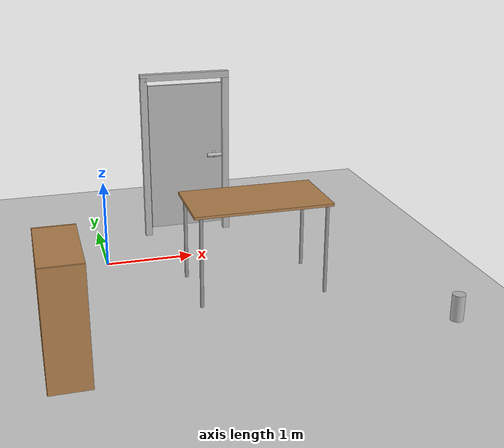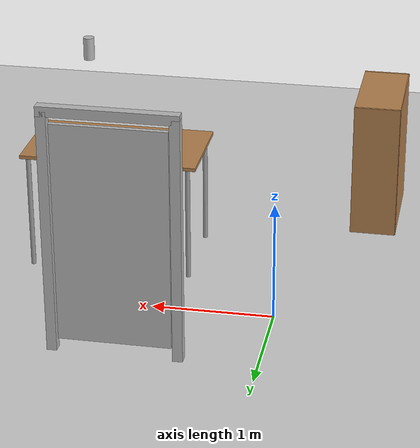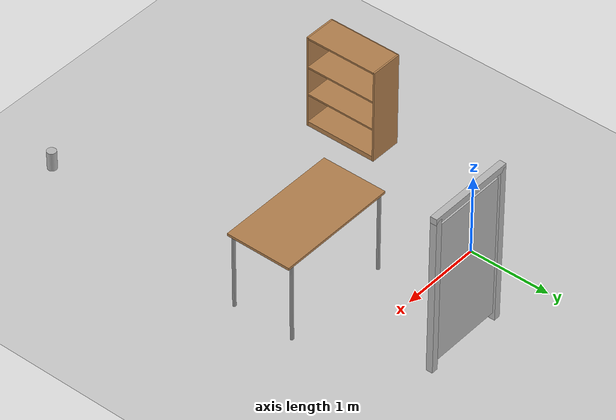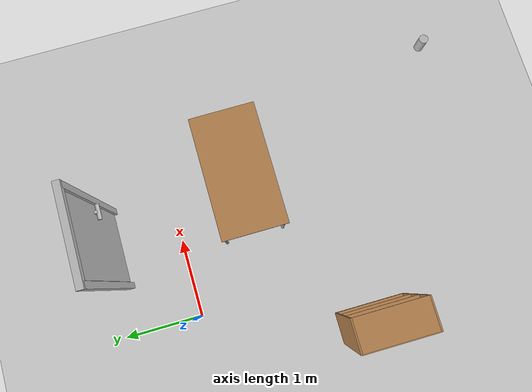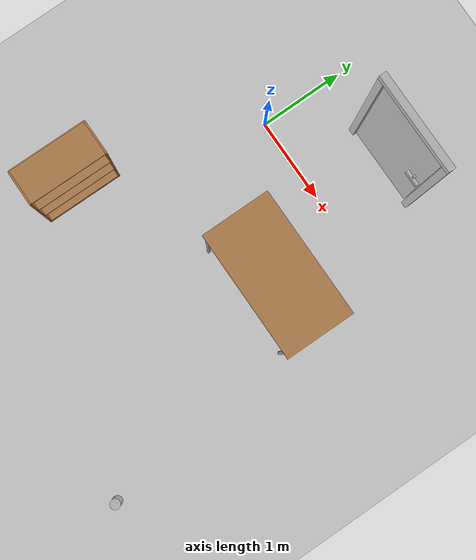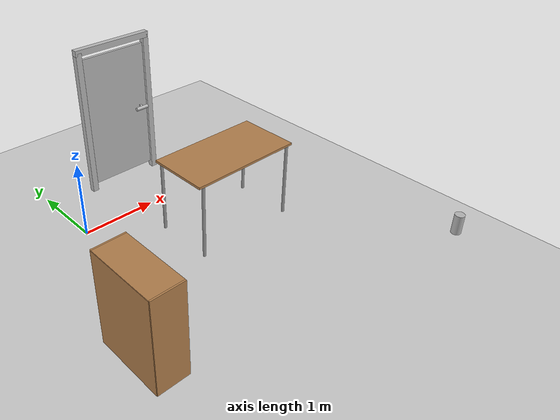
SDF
<sdf version="1.7">
 <world name="default">
  <physics type="ode">
   <real_time_update_rate>500</real_time_update_rate>
   <max_step_size>0.002</max_step_size>
   <ode>
    <solver>
     <type>quick</type>
     <iters>100</iters>
     <sor>1.3</sor>
     <use_dynamic_moi_rescaling>0</use_dynamic_moi_rescaling>
    </solver>
    <constraints>
     <cfm>0.0001</cfm>
     <erp>0.2</erp>
     <contact_max_correcting_vel>100</contact_max_correcting_vel>
     <contact_surface_layer>0.001</contact_surface_layer>
    </constraints>
   </ode>
   <real_time_factor>1</real_time_factor>
  </physics>
  <light name="sun" type="directional">
   <pose>0 0 10 0 -0 0</pose>
   <diffuse>0.8 0.8 0.8 1</diffuse>
   <specular>0.2 0.2 0.2 1</specular>
   <attenuation>
    <range>1000</range>
    <constant>0.9</constant>
    <linear>0.01</linear>
    <quadratic>0.001</quadratic>
   </attenuation>
   <direction>-0.5 0.1 -0.9</direction>
   <spot><inner_angle>0</inner_angle><outer_angle>0</outer_angle><falloff>0</falloff></spot>
  </light>
  <model name="ground_plane">
   <static>1</static>
   <link name="link">
    <collision name="collision">
     <geometry><plane><normal>0 0 1</normal><size>100 100</size></plane></geometry>
     <surface>
      <contact><collide_bitmask>65535</collide_bitmask></contact>
      <friction><ode><mu>100</mu><mu2>50</mu2></ode></friction>
     </surface>
    </collision>
    <visual name="visual">
     <cast_shadows>0</cast_shadows>
     <geometry><plane><normal>0 0 1</normal><size>100 100</size></plane></geometry>
     <material>
      <script><uri>file://media/materials/scripts/gazebo.material</uri><name>Gazebo/Grey</name></script>
     </material>
    </visual>
   </link>
  </model>
  <gravity>0 0 -9.8</gravity>
  <magnetic_field>6e-06 2.3e-05 -4.2e-05</magnetic_field>
  <atmosphere type="adiabatic"/>
  <scene><ambient>0.4 0.4 0.4 1</ambient><background>0.7 0.7 0.7 1</background><shadows>1</shadows></scene>
  <spherical_coordinates>
   <surface_model>EARTH_WGS84</surface_model>
   <latitude_deg>0</latitude_deg>
   <longitude_deg>0</longitude_deg>
   <elevation>0</elevation>
   <heading_deg>0</heading_deg>
  </spherical_coordinates>
  <model name="door">
   <link name="door_frame">
    <inertial>
     <pose>0.5 1 1 0 -0 0</pose>
     <mass>30</mass>
     <inertia><ixx>1</ixx><ixy>0</ixy><ixz>0</ixz><iyy>1</iyy><iyz>0</iyz><izz>1</izz></inertia>
    </inertial>
    <visual name="visual_frame_left">
     <pose>0 1 1 0 -0 0</pose>
     <geometry><box><size>0.08 0.08 2</size></box></geometry>
    </visual>
    <visual name="visual_frame_right">
     <pose>1 1 1 0 -0 0</pose>
     <geometry><box><size>0.08 0.08 2</size></box></geometry>
    </visual>
    <visual name="visual_frame_top">
     <pose>0.5 1 2 0 -0 0</pose>
     <geometry><box><size>1.08 0.08 0.08</size></box></geometry>
    </visual>
    <collision name="collision_frame_left">
     <pose>0 1 1 0 -0 0</pose>
     <geometry><box><size>0.08 0.08 2</size></box></geometry>
    </collision>
    <collision name="collision_frame_right">
     <pose>1 1 1 0 -0 0</pose>
     <geometry><box><size>0.08 0.08 2</size></box></geometry>
    </collision>
    <collision name="collision_frame_top">
     <pose>0.5 1 2 0 -0 0</pose>
     <geometry><box><size>1.08 0.08 0.08</size></box></geometry>
    </collision>
   </link>
   <link name="door_body">
    <inertial>
     <pose>0.5 1 1 0 -0 0</pose>
     <mass>5</mass>
     <inertia><ixx>0.2</ixx><ixy>0</ixy><ixz>0</ixz><iyy>0.2</iyy><iyz>0</iyz><izz>0.2</izz></inertia>
    </inertial>
    <visual name="visual_door">
     <pose>0.5 1 1 0 -0 0</pose>
     <geometry><box><size>0.9 0.04 1.8</size></box></geometry>
    </visual>
    <collision name="collision_door">
     <pose>0.5 1 1 0 -0 0</pose>
     <geometry><box><size>0.9 0.04 1.8</size></box></geometry>
    </collision>
   </link>
   <link name="door_handle">
    <inertial>
     <pose>0.85 0.965 1 0 -0 0</pose>
     <mass>0.2</mass>
     <inertia><ixx>0.001</ixx><ixy>0</ixy><ixz>0</ixz><iyy>0.001</iyy><iyz>0</iyz><izz>0.001</izz></inertia>
    </inertial>
    <visual name="visual_handle_bar">
     <pose>0.85 0.94 1 3.14159 1.57079 3.14159</pose>
     <geometry><cylinder><radius>0.025</radius><length>0.18</length></cylinder></geometry>
    </visual>
    <visual name="visual_handle_base">
     <pose>0.85 0.975 1 3.14159 1.57079 3.14159</pose>
     <geometry><cylinder><radius>0.04</radius><length>0.03</length></cylinder></geometry>
    </visual>
    <collision name="collision_handle_bar">
     <pose>0.85 0.94 1 3.14159 1.57079 3.14159</pose>
     <geometry><cylinder><radius>0.025</radius><length>0.18</length></cylinder></geometry>
    </collision>
    <collision name="collision_handle_base">
     <pose>0.85 0.975 1 3.14159 1.57079 3.14159</pose>
     <geometry><cylinder><radius>0.04</radius><length>0.03</length></cylinder></geometry>
    </collision>
   </link>
   <joint name="handle_joint" type="fixed"><parent>door_body</parent><child>door_handle</child></joint>
   <joint name="door_hinge" type="revolute">
    <parent>door_frame</parent>
    <child>door_body</child>
    <pose>0.05 1 1 0 -0 0</pose>
    <axis>
     <xyz expressed_in="__model__">0 0 1</xyz>
     <limit><lower>0</lower><upper>1.5708</upper><effort>20</effort><velocity>1.5</velocity></limit>
     <dynamics>
      <damping>0.1</damping>
      <friction>0.1</friction>
      <spring_reference>0</spring_reference>
      <spring_stiffness>0</spring_stiffness>
     </dynamics>
    </axis>
   </joint>
   <joint name="world_joint" type="fixed"><parent>world</parent><child>door_frame</child></joint>
   <pose>0.618759 -0.217366 -1e-06 0 -3e-06 0</pose>
  </model>
  <model name="table">
   <static>1</static>
   <link name="link">
    <collision name="surface">
     <pose>0 0 1 0 -0 0</pose>
     <geometry><box><size>1.5 0.8 0.03</size></box></geometry>
     <surface><friction><ode><mu>0.6</mu><mu2>0.6</mu2></ode></friction></surface>
    </collision>
    <visual name="visual1">
     <pose>0 0 1 0 -0 0</pose>
     <geometry><box><size>1.5 0.8 0.03</size></box></geometry>
     <material>
      <script><uri>file://media/materials/scripts/gazebo.material</uri><name>Gazebo/Wood</name></script>
     </material>
    </visual>
    <collision name="front_left_leg">
     <pose>0.68 0.38 0.5 0 -0 0</pose>
     <geometry><cylinder><radius>0.02</radius><length>1</length></cylinder></geometry>
    </collision>
    <visual name="front_left_leg">
     <pose>0.68 0.38 0.5 0 -0 0</pose>
     <geometry><cylinder><radius>0.02</radius><length>1</length></cylinder></geometry>
     <material>
      <script><uri>file://media/materials/scripts/gazebo.material</uri><name>Gazebo/Grey</name></script>
     </material>
    </visual>
    <collision name="front_right_leg">
     <pose>0.68 -0.38 0.5 0 -0 0</pose>
     <geometry><cylinder><radius>0.02</radius><length>1</length></cylinder></geometry>
    </collision>
    <visual name="front_right_leg">
     <pose>0.68 -0.38 0.5 0 -0 0</pose>
     <geometry><cylinder><radius>0.02</radius><length>1</length></cylinder></geometry>
     <material>
      <script><uri>file://media/materials/scripts/gazebo.material</uri><name>Gazebo/Grey</name></script>
     </material>
    </visual>
    <collision name="back_right_leg">
     <pose>-0.68 -0.38 0.5 0 -0 0</pose>
     <geometry><cylinder><radius>0.02</radius><length>1</length></cylinder></geometry>
    </collision>
    <visual name="back_right_leg">
     <pose>-0.68 -0.38 0.5 0 -0 0</pose>
     <geometry><cylinder><radius>0.02</radius><length>1</length></cylinder></geometry>
     <material>
      <script><uri>file://media/materials/scripts/gazebo.material</uri><name>Gazebo/Grey</name></script>
     </material>
    </visual>
    <collision name="back_left_leg">
     <pose>-0.68 0.38 0.5 0 -0 0</pose>
     <geometry><cylinder><radius>0.02</radius><length>1</length></cylinder></geometry>
    </collision>
    <visual name="back_left_leg">
     <pose>-0.68 0.38 0.5 0 -0 0</pose>
     <geometry><cylinder><radius>0.02</radius><length>1</length></cylinder></geometry>
     <material>
      <script><uri>file://media/materials/scripts/gazebo.material</uri><name>Gazebo/Grey</name></script>
     </material>
    </visual>
   </link>
   <pose>1.49483 -0.942068 0 0 -0 0</pose>
  </model>
  <model name="beer">
   <link name="link">
    <pose>0 0 0.115 0 -0 0</pose>
    <inertial>
     <mass>0.39</mass>
     <inertia><ixx>0.00058</ixx><ixy>0</ixy><ixz>0</ixz><iyy>0.00058</iyy><iyz>0</iyz><izz>0.00019</izz></inertia>
    </inertial>
    <collision name="collision">
     <geometry><cylinder><radius>0.055</radius><length>0.23</length></cylinder></geometry>
    </collision>
    <visual name="visual">
     <geometry><cylinder><radius>0.055</radius><length>0.23</length></cylinder></geometry>
     <material>
      <script>
       <uri>model://beer/materials/scripts</uri>
       <uri>model://beer/materials/textures</uri>
       <name>Beer/Diffuse</name>
      </script>
     </material>
    </visual>
   </link>
   <pose>2.43868 -3.5374 0.774983 -1.8e-05 4.5e-05 0.003291</pose>
  </model>
  <model name="bookshelf">
   <static>1</static>
   <link name="link">
    <inertial><mass>1</mass></inertial>
    <collision name="back">
     <pose>0 0.005 0.6 0 -0 0</pose>
     <geometry><box><size>0.9 0.01 1.2</size></box></geometry>
    </collision>
    <visual name="visual1">
     <pose>0 0.005 0.6 0 -0 0</pose>
     <geometry><box><size>0.9 0.01 1.2</size></box></geometry>
     <material>
      <script><uri>file://media/materials/scripts/gazebo.material</uri><name>Gazebo/Wood</name></script>
     </material>
    </visual>
    <collision name="left_side">
     <pose>0.45 -0.195 0.6 0 -0 0</pose>
     <geometry><box><size>0.02 0.4 1.2</size></box></geometry>
    </collision>
    <visual name="visual2">
     <pose>0.45 -0.195 0.6 0 -0 0</pose>
     <geometry><box><size>0.02 0.4 1.2</size></box></geometry>
     <material>
      <script><uri>file://media/materials/scripts/gazebo.material</uri><name>Gazebo/Wood</name></script>
     </material>
    </visual>
    <collision name="right_side">
     <pose>-0.45 -0.195 0.6 0 -0 0</pose>
     <geometry><box><size>0.02 0.4 1.2</size></box></geometry>
    </collision>
    <visual name="visual3">
     <pose>-0.45 -0.195 0.6 0 -0 0</pose>
     <geometry><box><size>0.02 0.4 1.2</size></box></geometry>
     <material>
      <script><uri>file://media/materials/scripts/gazebo.material</uri><name>Gazebo/Wood</name></script>
     </material>
    </visual>
    <collision name="bottom">
     <pose>0 -0.195 0.03 0 -0 0</pose>
     <geometry><box><size>0.88 0.4 0.06</size></box></geometry>
    </collision>
    <visual name="visual4">
     <pose>0 -0.195 0.03 0 -0 0</pose>
     <geometry><box><size>0.88 0.4 0.06</size></box></geometry>
     <material>
      <script><uri>file://media/materials/scripts/gazebo.material</uri><name>Gazebo/Wood</name></script>
     </material>
    </visual>
    <collision name="top">
     <pose>0 -0.195 1.19 0 -0 0</pose>
     <geometry><box><size>0.88 0.4 0.02</size></box></geometry>
    </collision>
    <visual name="visual5">
     <pose>0 -0.195 1.19 0 -0 0</pose>
     <geometry><box><size>0.88 0.4 0.02</size></box></geometry>
     <material>
      <script><uri>file://media/materials/scripts/gazebo.material</uri><name>Gazebo/Wood</name></script>
     </material>
    </visual>
    <collision name="low_shelf">
     <pose>0 -0.195 0.43 0 -0 0</pose>
     <geometry><box><size>0.88 0.4 0.02</size></box></geometry>
    </collision>
    <visual name="visual6">
     <pose>0 -0.195 0.43 0 -0 0</pose>
     <geometry><box><size>0.88 0.4 0.02</size></box></geometry>
     <material>
      <script><uri>file://media/materials/scripts/gazebo.material</uri><name>Gazebo/Wood</name></script>
     </material>
    </visual>
    <collision name="high_shelf">
     <pose>0 -0.195 0.8 0 -0 0</pose>
     <geometry><box><size>0.88 0.4 0.02</size></box></geometry>
    </collision>
    <visual name="visual7">
     <pose>0 -0.195 0.8 0 -0 0</pose>
     <geometry><box><size>0.88 0.4 0.02</size></box></geometry>
     <material>
      <script><uri>file://media/materials/scripts/gazebo.material</uri><name>Gazebo/Wood</name></script>
     </material>
    </visual>
   </link>
   <pose>-0.835514 -2.11199 0 0 -0 1.56729</pose>
  </model>
 </world>
</sdf>
